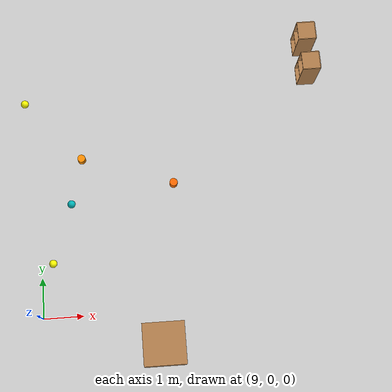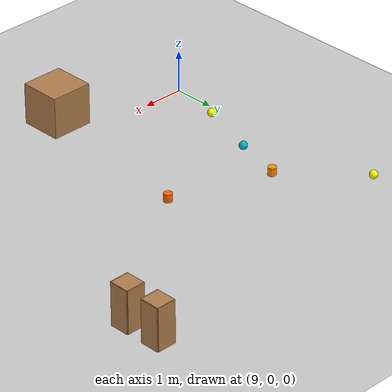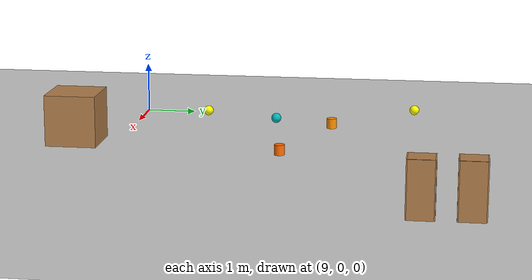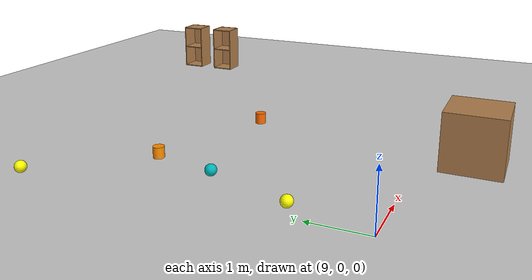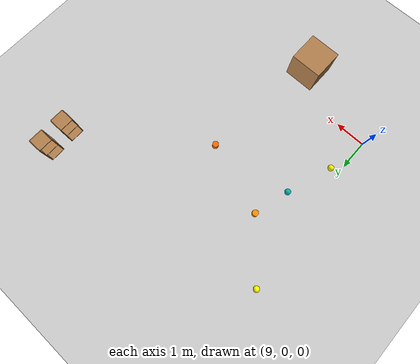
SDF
<sdf version="1.7">
 <world name="default">
  <model name="ground_plane">
   <pose>0 0 0 0 -0 0.716815</pose>
   <static>1</static>
   <link name="link">
    <collision name="collision">
     <geometry><plane><normal>0 0 1</normal><size>100 100</size></plane></geometry>
     <surface><friction><ode><mu>100</mu><mu2>50</mu2></ode></friction></surface>
    </collision>
    <visual name="visual">
     <cast_shadows>0</cast_shadows>
     <geometry><plane><normal>0 0 1</normal><size>100 100</size></plane></geometry>
     <material>
      <script><uri>file://media/materials/scripts/gazebo.material</uri><name>Gazebo/Grey</name></script>
     </material>
    </visual>
   </link>
  </model>
  <model name="sphere_bg">
   <link name="link_1">
    <pose>0 0 0.1 0 -0 0</pose>
    <inertial>
     <mass>1</mass>
     <inertia><ixx>0.1</ixx><ixy>0</ixy><ixz>0</ixz><iyy>0.1</iyy><iyz>0</iyz><izz>0.1</izz></inertia>
    </inertial>
    <visual name="visual">
     <geometry><sphere><radius>0.1</radius></sphere></geometry>
     <material>
      <lighting>1</lighting>
      <script><uri>file://media/materials/scripts/gazebo.material</uri><name>Gazebo/Grey</name></script>
      <ambient>0 0.71 0.722 1</ambient>
      <diffuse>0 0.71 0.722 1</diffuse>
      <specular>0 0 0 1</specular>
      <emissive>0 0 0 1</emissive>
      <shader type="vertex"><normal_map>__default__</normal_map></shader>
     </material>
    </visual>
    <collision name="collision">
     <geometry><sphere><radius>0.1</radius></sphere></geometry>
     <surface>
      <friction>
       <ode><mu>1</mu><mu2>1</mu2><fdir1>0 0 0</fdir1><slip1>0</slip1><slip2>0</slip2></ode>
       <torsional>
        <coefficient>1</coefficient>
        <patch_radius>0</patch_radius>
        <surface_radius>0</surface_radius>
        <use_patch_radius>1</use_patch_radius>
        <ode><slip>0</slip></ode>
       </torsional>
      </friction>
      <bounce><restitution_coefficient>0</restitution_coefficient><threshold>1e+06</threshold></bounce>
      <contact>
       <collide_without_contact>0</collide_without_contact>
       <collide_without_contact_bitmask>1</collide_without_contact_bitmask>
       <collide_bitmask>1</collide_bitmask>
       <ode>
        <soft_cfm>0</soft_cfm>
        <soft_erp>0.2</soft_erp>
        <kp>1e+13</kp>
        <kd>1</kd>
        <max_vel>0.01</max_vel>
        <min_depth>0</min_depth>
       </ode>
       <bullet>
        <split_impulse>1</split_impulse>
        <split_impulse_penetration_threshold>-0.01</split_impulse_penetration_threshold>
        <soft_cfm>0</soft_cfm>
        <soft_erp>0.2</soft_erp>
        <kp>1e+13</kp>
        <kd>1</kd>
       </bullet>
      </contact>
     </surface>
    </collision>
   </link>
   <static>1</static>
   <pose>9.79753 2.85162 0 0 -0 0</pose>
  </model>
  <model name="sphere_y">
   <link name="link_1">
    <pose>0 0 0.1 0 -0 0</pose>
    <inertial>
     <mass>1</mass>
     <inertia><ixx>0.1</ixx><ixy>0</ixy><ixz>0</ixz><iyy>0.1</iyy><iyz>0</iyz><izz>0.1</izz></inertia>
    </inertial>
    <visual name="visual">
     <geometry><sphere><radius>0.1</radius></sphere></geometry>
     <material>
      <lighting>1</lighting>
      <script><uri>file://media/materials/scripts/gazebo.material</uri><name>Gazebo/Grey</name></script>
      <ambient>1 1 0 1</ambient>
      <diffuse>1 1 0 1</diffuse>
      <specular>0 0 0 1</specular>
      <emissive>0 0 0 1</emissive>
      <shader type="vertex"><normal_map>__default__</normal_map></shader>
     </material>
    </visual>
    <collision name="collision">
     <geometry><sphere><radius>0.1</radius></sphere></geometry>
     <surface>
      <friction>
       <ode><mu>1</mu><mu2>1</mu2><fdir1>0 0 0</fdir1><slip1>0</slip1><slip2>0</slip2></ode>
       <torsional>
        <coefficient>1</coefficient>
        <patch_radius>0</patch_radius>
        <surface_radius>0</surface_radius>
        <use_patch_radius>1</use_patch_radius>
        <ode><slip>0</slip></ode>
       </torsional>
      </friction>
      <bounce><restitution_coefficient>0</restitution_coefficient><threshold>1e+06</threshold></bounce>
      <contact>
       <collide_without_contact>0</collide_without_contact>
       <collide_without_contact_bitmask>1</collide_without_contact_bitmask>
       <collide_bitmask>1</collide_bitmask>
       <ode>
        <soft_cfm>0</soft_cfm>
        <soft_erp>0.2</soft_erp>
        <kp>1e+13</kp>
        <kd>1</kd>
        <max_vel>0.01</max_vel>
        <min_depth>0</min_depth>
       </ode>
       <bullet>
        <split_impulse>1</split_impulse>
        <split_impulse_penetration_threshold>-0.01</split_impulse_penetration_threshold>
        <soft_cfm>0</soft_cfm>
        <soft_erp>0.2</soft_erp>
        <kp>1e+13</kp>
        <kd>1</kd>
       </bullet>
      </contact>
     </surface>
    </collision>
   </link>
   <static>1</static>
   <pose>8.6633 5.65897 0 0 -0 0</pose>
  </model>
  <model name="sphere_y_0">
   <link name="link_1">
    <pose>0 0 0.1 0 -0 0</pose>
    <inertial>
     <mass>1</mass>
     <inertia><ixx>0.1</ixx><ixy>0</ixy><ixz>0</ixz><iyy>0.1</iyy><iyz>0</iyz><izz>0.1</izz></inertia>
    </inertial>
    <visual name="visual">
     <geometry><sphere><radius>0.1</radius></sphere></geometry>
     <material>
      <lighting>1</lighting>
      <script><uri>file://media/materials/scripts/gazebo.material</uri><name>Gazebo/Grey</name></script>
      <ambient>1 1 0 1</ambient>
      <diffuse>1 1 0 1</diffuse>
      <specular>0 0 0 1</specular>
      <emissive>0 0 0 1</emissive>
      <shader type="vertex"><normal_map>__default__</normal_map></shader>
     </material>
    </visual>
    <collision name="collision">
     <geometry><sphere><radius>0.1</radius></sphere></geometry>
     <surface>
      <friction>
       <ode><mu>1</mu><mu2>1</mu2><fdir1>0 0 0</fdir1><slip1>0</slip1><slip2>0</slip2></ode>
       <torsional>
        <coefficient>1</coefficient>
        <patch_radius>0</patch_radius>
        <surface_radius>0</surface_radius>
        <use_patch_radius>1</use_patch_radius>
        <ode><slip>0</slip></ode>
       </torsional>
      </friction>
      <bounce><restitution_coefficient>0</restitution_coefficient><threshold>1e+06</threshold></bounce>
      <contact>
       <collide_without_contact>0</collide_without_contact>
       <collide_without_contact_bitmask>1</collide_without_contact_bitmask>
       <collide_bitmask>1</collide_bitmask>
       <ode>
        <soft_cfm>0</soft_cfm>
        <soft_erp>0.2</soft_erp>
        <kp>1e+13</kp>
        <kd>1</kd>
        <max_vel>0.01</max_vel>
        <min_depth>0</min_depth>
       </ode>
       <bullet>
        <split_impulse>1</split_impulse>
        <split_impulse_penetration_threshold>-0.01</split_impulse_penetration_threshold>
        <soft_cfm>0</soft_cfm>
        <soft_erp>0.2</soft_erp>
        <kp>1e+13</kp>
        <kd>1</kd>
       </bullet>
      </contact>
     </surface>
    </collision>
   </link>
   <static>1</static>
   <pose>9.28537 1.34849 0 0 -0 0</pose>
  </model>
  <model name="cylinder_o">
   <link name="link_0">
    <pose>0 0 0.1 0 -0 0</pose>
    <inertial>
     <mass>1</mass>
     <inertia><ixx>0.145833</ixx><ixy>0</ixy><ixz>0</ixz><iyy>0.145833</iyy><iyz>0</iyz><izz>0.125</izz></inertia>
    </inertial>
    <visual name="visual">
     <geometry><cylinder><radius>0.1</radius><length>0.2</length></cylinder></geometry>
     <material>
      <lighting>1</lighting>
      <script><uri>file://media/materials/scripts/gazebo.material</uri><name>Gazebo/Grey</name></script>
      <ambient>1 0.561 0 1</ambient>
      <diffuse>1 0.561 0 1</diffuse>
      <specular>0 0 0 1</specular>
      <emissive>0 0 0 1</emissive>
      <shader type="vertex"><normal_map>__default__</normal_map></shader>
     </material>
    </visual>
    <collision name="collision">
     <geometry><cylinder><radius>0.1</radius><length>0.2</length></cylinder></geometry>
     <surface>
      <friction>
       <ode><mu>1</mu><mu2>1</mu2><fdir1>0 0 0</fdir1><slip1>0</slip1><slip2>0</slip2></ode>
       <torsional>
        <coefficient>1</coefficient>
        <patch_radius>0</patch_radius>
        <surface_radius>0</surface_radius>
        <use_patch_radius>1</use_patch_radius>
        <ode><slip>0</slip></ode>
       </torsional>
      </friction>
      <bounce><restitution_coefficient>0</restitution_coefficient><threshold>1e+06</threshold></bounce>
      <contact>
       <collide_without_contact>0</collide_without_contact>
       <collide_without_contact_bitmask>1</collide_without_contact_bitmask>
       <collide_bitmask>1</collide_bitmask>
       <ode>
        <soft_cfm>0</soft_cfm>
        <soft_erp>0.2</soft_erp>
        <kp>1e+13</kp>
        <kd>1</kd>
        <max_vel>0.01</max_vel>
        <min_depth>0</min_depth>
       </ode>
       <bullet>
        <split_impulse>1</split_impulse>
        <split_impulse_penetration_threshold>-0.01</split_impulse_penetration_threshold>
        <soft_cfm>0</soft_cfm>
        <soft_erp>0.2</soft_erp>
        <kp>1e+13</kp>
        <kd>1</kd>
       </bullet>
      </contact>
     </surface>
    </collision>
   </link>
   <static>1</static>
   <pose>10.1079 4.02868 0 0 -0 0</pose>
  </model>
  <model name="cylinder_or">
   <link name="link_0">
    <pose>0 0 0.1 0 -0 0</pose>
    <inertial>
     <mass>1</mass>
     <inertia><ixx>0.145833</ixx><ixy>0</ixy><ixz>0</ixz><iyy>0.145833</iyy><iyz>0</iyz><izz>0.125</izz></inertia>
    </inertial>
    <visual name="visual">
     <geometry><cylinder><radius>0.1</radius><length>0.2</length></cylinder></geometry>
     <material>
      <lighting>1</lighting>
      <script><uri>file://media/materials/scripts/gazebo.material</uri><name>Gazebo/Grey</name></script>
      <ambient>1 0.416 0 1</ambient>
      <diffuse>1 0.416 0 1</diffuse>
      <specular>0 0 0 1</specular>
      <emissive>0 0 0 1</emissive>
      <shader type="vertex"><normal_map>__default__</normal_map></shader>
     </material>
    </visual>
    <collision name="collision">
     <geometry><cylinder><radius>0.1</radius><length>0.2</length></cylinder></geometry>
     <surface>
      <friction>
       <ode><mu>1</mu><mu2>1</mu2><fdir1>0 0 0</fdir1><slip1>0</slip1><slip2>0</slip2></ode>
       <torsional>
        <coefficient>1</coefficient>
        <patch_radius>0</patch_radius>
        <surface_radius>0</surface_radius>
        <use_patch_radius>1</use_patch_radius>
        <ode><slip>0</slip></ode>
       </torsional>
      </friction>
      <bounce><restitution_coefficient>0</restitution_coefficient><threshold>1e+06</threshold></bounce>
      <contact>
       <collide_without_contact>0</collide_without_contact>
       <collide_without_contact_bitmask>1</collide_without_contact_bitmask>
       <collide_bitmask>1</collide_bitmask>
       <ode>
        <soft_cfm>0</soft_cfm>
        <soft_erp>0.2</soft_erp>
        <kp>1e+13</kp>
        <kd>1</kd>
        <max_vel>0.01</max_vel>
        <min_depth>0</min_depth>
       </ode>
       <bullet>
        <split_impulse>1</split_impulse>
        <split_impulse_penetration_threshold>-0.01</split_impulse_penetration_threshold>
        <soft_cfm>0</soft_cfm>
        <soft_erp>0.2</soft_erp>
        <kp>1e+13</kp>
        <kd>1</kd>
       </bullet>
      </contact>
     </surface>
    </collision>
   </link>
   <static>1</static>
   <pose>12.4461 3.2348 0 0 -0 0</pose>
  </model>
  <model name="obs1x1_2">
   <pose>12.3231 -0.430334 0 0 -0 0</pose>
   <link name="Wall_0">
    <collision name="Wall_0_Collision">
     <geometry><box><size>1.01 1 1</size></box></geometry>
     <pose>0 0 0.5 0 -0 0</pose>
    </collision>
    <visual name="Wall_0_Visual">
     <pose>0 0 0.5 0 -0 0</pose>
     <geometry><box><size>1.01 1 1</size></box></geometry>
     <material>
      <script><uri>file://media/materials/scripts/gazebo.material</uri><name>Gazebo/Wood</name></script>
      <ambient>1 1 1 1</ambient>
     </material>
     <meta><layer>0</layer></meta>
    </visual>
    <pose>-0.39 -0.41 0 0 -0 0</pose>
   </link>
   <static>1</static>
  </model>
  <model name="cabinet_6">
   <static>1</static>
   <link name="cabinet_bottom_plate">
    <inertial>
     <pose>0 0 -1 0 -0 0</pose>
     <inertia><ixx>2.05</ixx><ixy>0</ixy><ixz>0</ixz><iyy>2.05</iyy><iyz>0</iyz><izz>2.05</izz></inertia>
     <mass>25</mass>
    </inertial>
    <collision name="cabinet_bottom_plate_geom">
     <pose>0 0 0.01 0 -0 0</pose>
     <geometry><box><size>0.45 0.45 0.02</size></box></geometry>
    </collision>
    <visual name="cabinet_bottom_plate_geom_visual">
     <pose>0 0 0.01 0 -0 0</pose>
     <geometry><box><size>0.45 0.45 0.02</size></box></geometry>
     <material>
      <script><uri>file://media/materials/scripts/gazebo.material</uri><name>Gazebo/Wood</name></script>
     </material>
    </visual>
    <collision name="cabinet_bottom_plate_geom_cabinet_back_plate">
     <pose>0.235 0 0.51 0 -0 0</pose>
     <geometry><box><size>0.02 0.45 1.02</size></box></geometry>
    </collision>
    <visual name="cabinet_bottom_plate_geom_cabinet_back_plate_visual">
     <pose>0.235 0 0.51 0 -0 0</pose>
     <geometry><box><size>0.02 0.45 1.02</size></box></geometry>
     <material>
      <script><uri>file://media/materials/scripts/gazebo.material</uri><name>Gazebo/Wood</name></script>
     </material>
    </visual>
    <collision name="cabinet_bottom_plate_geom_cabinet_left_plate">
     <pose>0 0.235 0.51 0 -0 0</pose>
     <geometry><box><size>0.45 0.02 1.02</size></box></geometry>
    </collision>
    <visual name="cabinet_bottom_plate_geom_cabinet_left_plate_visual">
     <pose>0 0.235 0.51 0 -0 0</pose>
     <geometry><box><size>0.45 0.02 1.02</size></box></geometry>
     <material>
      <script><uri>file://media/materials/scripts/gazebo.material</uri><name>Gazebo/Wood</name></script>
     </material>
    </visual>
    <collision name="cabinet_bottom_plate_geom_cabinet_middle_plate">
     <pose>0 0 0.51 0 -0 0</pose>
     <geometry><box><size>0.45 0.45 0.02</size></box></geometry>
    </collision>
    <visual name="cabinet_bottom_plate_geom_cabinet_middle_plate_visual">
     <pose>0 0 0.51 0 -0 0</pose>
     <geometry><box><size>0.45 0.45 0.02</size></box></geometry>
     <material>
      <script><uri>file://media/materials/scripts/gazebo.material</uri><name>Gazebo/Wood</name></script>
     </material>
    </visual>
    <collision name="cabinet_bottom_plate_geom_cabinet_right_plate">
     <pose>0 -0.235 0.51 0 -0 0</pose>
     <geometry><box><size>0.45 0.02 1.02</size></box></geometry>
    </collision>
    <visual name="cabinet_bottom_plate_geom_cabinet_right_plate_visual">
     <pose>0 -0.235 0.51 0 -0 0</pose>
     <geometry><box><size>0.45 0.02 1.02</size></box></geometry>
     <material>
      <script><uri>file://media/materials/scripts/gazebo.material</uri><name>Gazebo/Wood</name></script>
     </material>
    </visual>
    <collision name="cabinet_bottom_plate_geom_cabinet_top_plate">
     <pose>0 0 1.01 0 -0 0</pose>
     <geometry><box><size>0.45 0.45 0.02</size></box></geometry>
    </collision>
    <visual name="cabinet_bottom_plate_geom_cabinet_top_plate_visual">
     <pose>0 0 1.01 0 -0 0</pose>
     <geometry><box><size>0.45 0.45 0.02</size></box></geometry>
     <material>
      <script><uri>file://media/materials/scripts/gazebo.material</uri><name>Gazebo/Wood</name></script>
     </material>
    </visual>
   </link>
   <pose>16.1475 6.83468 0 0 -0 0</pose>
  </model>
  <model name="cabinet_7">
   <static>1</static>
   <link name="cabinet_bottom_plate">
    <inertial>
     <pose>0 0 -1 0 -0 0</pose>
     <inertia><ixx>2.05</ixx><ixy>0</ixy><ixz>0</ixz><iyy>2.05</iyy><iyz>0</iyz><izz>2.05</izz></inertia>
     <mass>25</mass>
    </inertial>
    <collision name="cabinet_bottom_plate_geom">
     <pose>0 0 0.01 0 -0 0</pose>
     <geometry><box><size>0.45 0.45 0.02</size></box></geometry>
    </collision>
    <visual name="cabinet_bottom_plate_geom_visual">
     <pose>0 0 0.01 0 -0 0</pose>
     <geometry><box><size>0.45 0.45 0.02</size></box></geometry>
     <material>
      <script><uri>file://media/materials/scripts/gazebo.material</uri><name>Gazebo/Wood</name></script>
     </material>
    </visual>
    <collision name="cabinet_bottom_plate_geom_cabinet_back_plate">
     <pose>0.235 0 0.51 0 -0 0</pose>
     <geometry><box><size>0.02 0.45 1.02</size></box></geometry>
    </collision>
    <visual name="cabinet_bottom_plate_geom_cabinet_back_plate_visual">
     <pose>0.235 0 0.51 0 -0 0</pose>
     <geometry><box><size>0.02 0.45 1.02</size></box></geometry>
     <material>
      <script><uri>file://media/materials/scripts/gazebo.material</uri><name>Gazebo/Wood</name></script>
     </material>
    </visual>
    <collision name="cabinet_bottom_plate_geom_cabinet_left_plate">
     <pose>0 0.235 0.51 0 -0 0</pose>
     <geometry><box><size>0.45 0.02 1.02</size></box></geometry>
    </collision>
    <visual name="cabinet_bottom_plate_geom_cabinet_left_plate_visual">
     <pose>0 0.235 0.51 0 -0 0</pose>
     <geometry><box><size>0.45 0.02 1.02</size></box></geometry>
     <material>
      <script><uri>file://media/materials/scripts/gazebo.material</uri><name>Gazebo/Wood</name></script>
     </material>
    </visual>
    <collision name="cabinet_bottom_plate_geom_cabinet_middle_plate">
     <pose>0 0 0.51 0 -0 0</pose>
     <geometry><box><size>0.45 0.45 0.02</size></box></geometry>
    </collision>
    <visual name="cabinet_bottom_plate_geom_cabinet_middle_plate_visual">
     <pose>0 0 0.51 0 -0 0</pose>
     <geometry><box><size>0.45 0.45 0.02</size></box></geometry>
     <material>
      <script><uri>file://media/materials/scripts/gazebo.material</uri><name>Gazebo/Wood</name></script>
     </material>
    </visual>
    <collision name="cabinet_bottom_plate_geom_cabinet_right_plate">
     <pose>0 -0.235 0.51 0 -0 0</pose>
     <geometry><box><size>0.45 0.02 1.02</size></box></geometry>
    </collision>
    <visual name="cabinet_bottom_plate_geom_cabinet_right_plate_visual">
     <pose>0 -0.235 0.51 0 -0 0</pose>
     <geometry><box><size>0.45 0.02 1.02</size></box></geometry>
     <material>
      <script><uri>file://media/materials/scripts/gazebo.material</uri><name>Gazebo/Wood</name></script>
     </material>
    </visual>
    <collision name="cabinet_bottom_plate_geom_cabinet_top_plate">
     <pose>0 0 1.01 0 -0 0</pose>
     <geometry><box><size>0.45 0.45 0.02</size></box></geometry>
    </collision>
    <visual name="cabinet_bottom_plate_geom_cabinet_top_plate_visual">
     <pose>0 0 1.01 0 -0 0</pose>
     <geometry><box><size>0.45 0.45 0.02</size></box></geometry>
     <material>
      <script><uri>file://media/materials/scripts/gazebo.material</uri><name>Gazebo/Wood</name></script>
     </material>
    </visual>
   </link>
   <pose>16.1648 5.9971 0 0 -0 0</pose>
  </model>
 </world>
</sdf>
